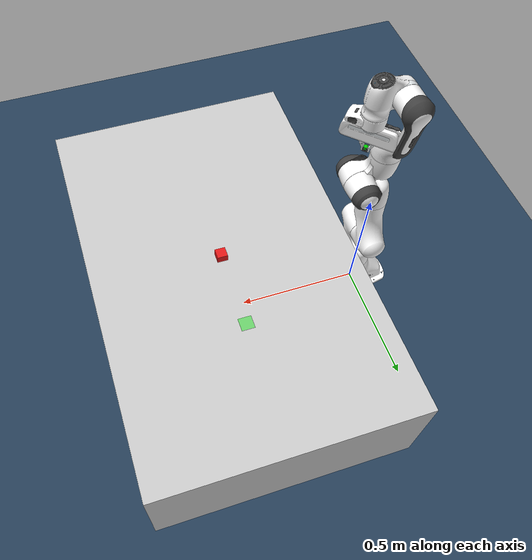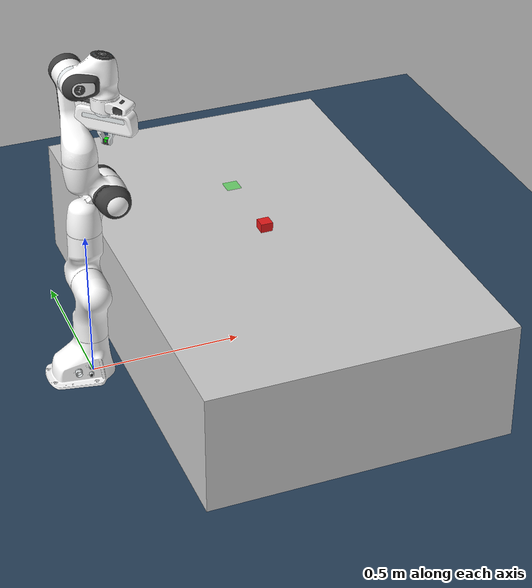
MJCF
<mujoco model="panda_pick_place_scene">

  <compiler angle="radian" meshdir="franka_emika_panda/assets" autolimits="true"/>
  <option timestep="0.002" integrator="RK4" gravity="0 0 -9.81"/>

  <default>
    <default class="panda">
      <material specular="0.5" shininess="0.25"/>
      <joint armature="0.1" damping="1" axis="0 0 1" range="-2.8973 2.8973"/>
      <general dyntype="none" biastype="affine" ctrlrange="-2.8973 2.8973" forcerange="-87 87"/>
      <default class="finger"> <joint axis="0 1 0" type="slide" range="0 0.04"/> </default>
      <default class="visual"> <geom type="mesh" contype="0" conaffinity="0" group="2"/> </default>
      <default class="collision"> <geom type="mesh" group="3"/> </default>
      <default class="fingertip_pad_collision_1"> <geom type="box" size="0.0085 0.004 0.0085" pos="0 0.0055 0.0445"/> </default>
      <default class="fingertip_pad_collision_2"> <geom type="box" size="0.003 0.002 0.003" pos="0.0055 0.002 0.05"/> </default>
      <default class="fingertip_pad_collision_3"> <geom type="box" size="0.003 0.002 0.003" pos="-0.0055 0.002 0.05"/> </default>
      <default class="fingertip_pad_collision_4"> <geom type="box" size="0.003 0.002 0.0035" pos="0.0055 0.002 0.0395"/> </default>
      <default class="fingertip_pad_collision_5"> <geom type="box" size="0.003 0.002 0.0035" pos="-0.0055 0.002 0.0395"/> </default>
    </default>
  </default>

<asset>
    <!-- Scene Assets -->
    <texture name="grid" type="2d" builtin="checker" rgb1="0.1 0.2 0.3" rgb2="0.2 0.3 0.4" width="300" height="300"/>
    <material name="grid" texture="grid" texrepeat="5 5" texuniform="true" reflectance="0.2"/>
    <material name="cube_mat" rgba="0.9 0.1 0.1 1.0"/>
    <material name="goal_mat" rgba="0.1 0.9 0.1 0.5"/>
    <!-- Robot Assets (Complete) -->
    <material class="panda" name="white" rgba="1 1 1 1"/>
    <material class="panda" name="off_white" rgba="0.901961 0.921569 0.929412 1"/>
    <material class="panda" name="black" rgba="0.25 0.25 0.25 1"/>
    <material class="panda" name="green" rgba="0 1 0 1"/>
    <material class="panda" name="light_blue" rgba="0.039216 0.541176 0.780392 1"/>

    <!-- *** START OF THE FIX *** -->
    <!-- All robot meshes, now pointing to the CORRECT filenames that exist in your folder. -->
    <mesh name="link0_c" file="link0.stl"/>
    <mesh name="link1_c" file="link1.stl"/>
    <mesh name="link2_c" file="link2.stl"/>
    <mesh name="link3_c" file="link3.stl"/>
    <mesh name="link4_c" file="link4.stl"/>
    <mesh name="link5_c0" file="link5_collision_0.obj"/>
    <mesh name="link5_c1" file="link5_collision_1.obj"/>
    <mesh name="link5_c2" file="link5_collision_2.obj"/>
    <mesh name="link6_c" file="link6.stl"/>
    <mesh name="link7_c" file="link7.stl"/>
    <mesh name="hand_c" file="hand.stl"/>
    <!-- *** END OF THE FIX *** -->

    <!-- Visual Meshes (these are likely correct already) -->
    <mesh file="link0_0.obj"/> <mesh file="link0_1.obj"/> <mesh file="link0_2.obj"/> <mesh file="link0_3.obj"/> <mesh file="link0_4.obj"/> <mesh file="link0_5.obj"/> <mesh file="link0_7.obj"/> <mesh file="link0_8.obj"/> <mesh file="link0_9.obj"/> <mesh file="link0_10.obj"/> <mesh file="link0_11.obj"/>
    <mesh file="link1.obj"/> <mesh file="link2.obj"/> <mesh file="link3_0.obj"/> <mesh file="link3_1.obj"/> <mesh file="link3_2.obj"/> <mesh file="link3_3.obj"/>
    <mesh file="link4_0.obj"/> <mesh file="link4_1.obj"/> <mesh file="link4_2.obj"/> <mesh file="link4_3.obj"/>
    <mesh file="link5_0.obj"/> <mesh file="link5_1.obj"/> <mesh file="link5_2.obj"/>
    <mesh file="link6_0.obj"/> <mesh file="link6_1.obj"/> <mesh file="link6_2.obj"/> <mesh file="link6_3.obj"/> <mesh file="link6_4.obj"/> <mesh file="link6_5.obj"/> <mesh file="link6_6.obj"/> <mesh file="link6_7.obj"/> <mesh file="link6_8.obj"/> <mesh file="link6_9.obj"/> <mesh file="link6_10.obj"/> <mesh file="link6_11.obj"/> <mesh file="link6_12.obj"/> <mesh file="link6_13.obj"/> <mesh file="link6_14.obj"/> <mesh file="link6_15.obj"/> <mesh file="link6_16.obj"/>
    <mesh file="link7_0.obj"/> <mesh file="link7_1.obj"/> <mesh file="link7_2.obj"/> <mesh file="link7_3.obj"/> <mesh file="link7_4.obj"/> <mesh file="link7_5.obj"/> <mesh file="link7_6.obj"/> <mesh file="link7_7.obj"/>
    <mesh file="hand_0.obj"/> <mesh file="hand_1.obj"/> <mesh file="hand_2.obj"/> <mesh file="hand_3.obj"/> <mesh file="hand_4.obj"/>
    <mesh file="finger_0.obj"/> <mesh file="finger_1.obj"/>
  </asset>
  <worldbody>
    <light pos="0 0 1.5" dir="0 0 -1" directional="true"/>
    <geom name="floor" type="plane" size="0 0 0.05" material="grid"/>
<body name="table" pos="0.6 0 0.2"><geom name="table_geom" type="box" size="0.5 0.8 0.2" rgba="0.8 0.8 0.8 1"/></body>
<body name="object" pos="0.6 0.0 0.41"><joint type="free" name="object_joint" damping="1.0"/><geom name="object_geom" type="box" size="0.02 0.02 0.02" material="cube_mat" mass="0.25"/></body>
<body name="goal" pos="0.6 0.3 0.401"><geom name="goal_geom" type="box" size="0.025 0.025 0.001" material="goal_mat" contype="0" conaffinity="0"/></body>

<camera name="fixed_camera" pos="0.6 -1.0 1.0" xyaxes="1 0 0 0 0.707 0.707"/>

    <body name="link0" pos="0 0 0" childclass="panda">

      <inertial mass="0.629769" pos="-0.041018 -0.00014 0.049974" fullinertia="0.00315 0.00388 0.004285 8.2904e-7 0.00015 8.2299e-6"/>
      <geom class="visual" mesh="link0_0" material="off_white"/> <geom class="visual" mesh="link0_1" material="black"/> <geom class="visual" mesh="link0_2" material="off_white"/> <geom class="visual" mesh="link0_3" material="black"/> <geom class="visual" mesh="link0_4" material="off_white"/> <geom class="visual" mesh="link0_5" material="black"/> <geom class="visual" mesh="link0_7" material="white"/> <geom class="visual" mesh="link0_8" material="white"/> <geom class="visual" mesh="link0_9" material="black"/> <geom class="visual" mesh="link0_10" material="off_white"/> <geom class="visual" mesh="link0_11" material="white"/>
      <geom class="collision" mesh="link0_c"/>
      <body name="link1" pos="0 0 0.333">
        <inertial mass="4.970684" pos="0.003875 0.002081 -0.04762" fullinertia="0.70337 0.70661 0.0091170 -0.00013900 0.0067720 0.019169"/>
        <joint name="joint1"/>
        <geom class="visual" material="white" mesh="link1"/>
        <geom class="collision" mesh="link1_c"/>
        <body name="link2" quat="1 -1 0 0">
          <inertial mass="0.646926" pos="-0.003141 -0.02872 0.003495" fullinertia="0.0079620 2.8110e-2 2.5995e-2 -3.925e-3 1.0254e-2 7.04e-4"/>
          <joint name="joint2" range="-1.7628 1.7628"/>
          <geom class="visual" material="white" mesh="link2"/>
          <geom class="collision" mesh="link2_c"/>
          <body name="link3" pos="0 -0.316 0" quat="1 1 0 0">
            <inertial mass="3.228604" pos="2.7518e-2 3.9252e-2 -6.6502e-2" fullinertia="3.7242e-2 3.6155e-2 1.083e-2 -4.761e-3 -1.1396e-2 -1.2805e-2"/>
            <joint name="joint3"/>
            <geom class="visual" material="white" mesh="link3_0"/> <geom class="visual" material="white" mesh="link3_1"/> <geom class="visual" material="white" mesh="link3_2"/> <geom class="visual" material="black" mesh="link3_3"/>
            <geom class="collision" mesh="link3_c"/>
            <body name="link4" pos="0.0825 0 0" quat="1 1 0 0">
              <inertial mass="3.587895" pos="-5.317e-2 1.04419e-1 2.7454e-2" fullinertia="2.5853e-2 1.9552e-2 2.8323e-2 7.796e-3 -1.332e-3 8.641e-3"/>
              <joint name="joint4" range="-3.0718 -0.0698"/>
              <geom class="visual" material="white" mesh="link4_0"/> <geom class="visual" material="white" mesh="link4_1"/> <geom class="visual" material="black" mesh="link4_2"/> <geom class="visual" material="white" mesh="link4_3"/>
              <geom class="collision" mesh="link4_c"/>
              <body name="link5" pos="-0.0825 0.384 0" quat="1 -1 0 0">
                <inertial mass="1.225946" pos="-1.1953e-2 4.1065e-2 -3.8437e-2" fullinertia="3.5549e-2 2.9474e-2 8.627e-3 -2.117e-3 -4.037e-3 2.29e-4"/>
                <joint name="joint5"/>
                <geom class="visual" material="black" mesh="link5_0"/> <geom class="visual" material="white" mesh="link5_1"/> <geom class="visual" material="white" mesh="link5_2"/>
                <geom class="collision" mesh="link5_c0"/> <geom class="collision" mesh="link5_c1"/> <geom class="collision" mesh="link5_c2"/>
                <body name="link6" quat="1 1 0 0">
                  <inertial mass="1.666555" pos="6.0149e-2 -1.4117e-2 -1.0517e-2" fullinertia="1.964e-3 4.354e-3 5.433e-3 1.09e-4 -1.158e-3 3.41e-4"/>
                  <joint name="joint6" range="-0.0175 3.7525"/>
                  <geom class="visual" material="off_white" mesh="link6_0"/> <geom class="visual" material="white" mesh="link6_1"/> <geom class="visual" material="black" mesh="link6_2"/> <geom class="visual" material="white" mesh="link6_3"/> <geom class="visual" material="white" mesh="link6_4"/> <geom class="visual" material="white" mesh="link6_5"/> <geom class="visual" material="white" mesh="link6_6"/> <geom class="visual" material="light_blue" mesh="link6_7"/> <geom class="visual" material="light_blue" mesh="link6_8"/> <geom class="visual" material="black" mesh="link6_9"/> <geom class="visual" material="black" mesh="link6_10"/> <geom class="visual" material="white" mesh="link6_11"/> <geom class="visual" material="green" mesh="link6_12"/> <geom class="visual" material="white" mesh="link6_13"/> <geom class="visual" material="black" mesh="link6_14"/> <geom class="visual" material="black" mesh="link6_15"/> <geom class="visual" material="white" mesh="link6_16"/>
                  <geom class="collision" mesh="link6_c"/>
                  <body name="link7" pos="0.088 0 0" quat="1 1 0 0">
                    <inertial mass="7.35522e-01" pos="1.0517e-2 -4.252e-3 6.1597e-2" fullinertia="1.2516e-2 1.0027e-2 4.815e-3 -4.28e-4 -1.196e-3 -7.41e-4"/>
                    <joint name="joint7"/>
                    <geom class="visual" material="white" mesh="link7_0"/> <geom class="visual" material="black" mesh="link7_1"/> <geom class="visual" material="black" mesh="link7_2"/> <geom class="visual" material="black" mesh="link7_3"/> <geom class="visual" material="black" mesh="link7_4"/> <geom class="visual" material="black" mesh="link7_5"/> <geom class="visual" material="black" mesh="link7_6"/> <geom class="visual" material="white" mesh="link7_7"/>
                    <geom class="collision" mesh="link7_c"/>
                    <body name="hand" pos="0 0 0.107" quat="0.9238795 0 0 -0.3826834">
                      <inertial mass="0.73" pos="-0.01 0 0.03" diaginertia="0.001 0.0025 0.0017"/>
                      <geom class="visual" material="off_white" mesh="hand_0"/> <geom class="visual" material="black" mesh="hand_1"/> <geom class="visual" material="black" mesh="hand_2"/> <geom class="visual" material="white" mesh="hand_3"/> <geom class="visual" material="off_white" mesh="hand_4"/>
                      <geom class="collision" mesh="hand_c"/>
                      <site name="attachment_site" type="sphere" size="0.01" pos="0 0 0.1" rgba="0 0.8 0 1"/>
                      <body name="left_finger" pos="0 0 0.0584">
                        <inertial mass="0.015" pos="0 0 0" diaginertia="2.375e-6 2.375e-6 7.5e-7"/>
                        <joint name="finger_joint1" class="finger"/>
                        <geom class="visual" material="off_white" mesh="finger_0"/> <geom class="visual" material="black" mesh="finger_1"/>
                        <geom class="collision" mesh="finger_0"/>
                        <geom class="fingertip_pad_collision_1"/> <geom class="fingertip_pad_collision_2"/> <geom class="fingertip_pad_collision_3"/> <geom class="fingertip_pad_collision_4"/> <geom class="fingertip_pad_collision_5"/>
                      </body>
                      <body name="right_finger" pos="0 0 0.0584" quat="0 0 0 1">
                        <inertial mass="0.015" pos="0 0 0" diaginertia="2.375e-6 2.375e-6 7.5e-7"/>
                        <joint name="finger_joint2" class="finger"/>
                        <geom class="visual" material="off_white" mesh="finger_0"/> <geom class="visual" material="black" mesh="finger_1"/>
                        <geom class="collision" mesh="finger_0"/>
                        <geom class="fingertip_pad_collision_1"/> <geom class="fingertip_pad_collision_2"/> <geom class="fingertip_pad_collision_3"/> <geom class="fingertip_pad_collision_4"/> <geom class="fingertip_pad_collision_5"/>
                      </body>
                    </body>
                  </body>
                </body>
              </body>
            </body>
          </body>
        </body>
      </body>
    </body>
  </worldbody>

  <tendon>
    <fixed name="split">
      <joint joint="finger_joint1" coef="0.5"/>
      <joint joint="finger_joint2" coef="0.5"/>
    </fixed>
  </tendon>

  <equality>
    <joint joint1="finger_joint1" joint2="finger_joint2" solimp="0.95 0.99 0.001" solref="0.005 1"/>
  </equality>

  <actuator>
    <general class="panda" name="actuator1" joint="joint1" gainprm="4500" biasprm="0 -4500 -450"/>
    <general class="panda" name="actuator2" joint="joint2" ctrlrange="-1.7628 1.7628" gainprm="4500" biasprm="0 -4500 -450"/>
    <general class="panda" name="actuator3" joint="joint3" gainprm="3500" biasprm="0 -3500 -350"/>
    <general class="panda" name="actuator4" joint="joint4" ctrlrange="-3.0718 -0.0698" gainprm="3500" biasprm="0 -3500 -350"/>
    <general class="panda" name="actuator5" joint="joint5" forcerange="-12 12" gainprm="2000" biasprm="0 -2000 -200"/>
    <general class="panda" name="actuator6" joint="joint6" ctrlrange="-0.0175 3.7525" forcerange="-12 12" gainprm="2000" biasprm="0 -2000 -200"/>
    <general class="panda" name="actuator7" joint="joint7" forcerange="-12 12" gainprm="2000" biasprm="0 -2000 -200"/>
    <general class="panda" name="actuator8" tendon="split" forcerange="-100 100" ctrlrange="0 255" gainprm="0.01568627451 0 0" biasprm="0 -100 -10"/>
  </actuator>

  <contact>
    <exclude body1="link0" body2="link1"/>
    <exclude body1="left_finger" body2="table"/>
    <exclude body1="right_finger" body2="table"/>
  </contact>
</mujoco>
